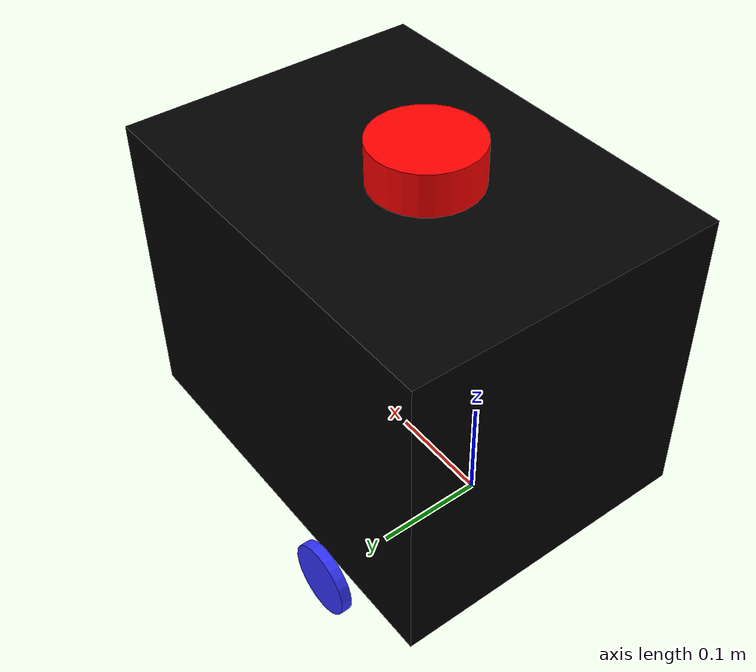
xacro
<?xml version="1.0"?>
<robot xmlns:xacro="http://www.ros.org/wiki/xacro"  name="robot">

    <xacro:arg name="use_ros2_control" default="true" />
    <xacro:arg name="sim_mode" default="false" />

    <xacro:include filename="robot_core.xacro" />

    <xacro:if value="$(arg use_ros2_control)">
        <xacro:include filename="ros2_control.xacro" />
    </xacro:if>
    <xacro:unless value="$(arg use_ros2_control)">
        <xacro:include filename="gazebo_control.xacro" />
    </xacro:unless>

    <xacro:include filename="lidar.xacro" />

</robot>

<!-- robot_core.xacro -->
<robot xmlns:xacro="http://www.ros.org/wiki/xacro"  name="robot">

    <xacro:include filename="inertial_macros.xacro" />

    <xacro:property name="chassis_length" value="0.4"/>

    <xacro:property name="wheel_thickness" value="0.01"/>
    <xacro:property name="wheel_offset_y" value="0.1675"/>
    <xacro:property name="wheel_radius" value="0.034"/>

    <material name="white">
        <color rgba="1 1 1 1"/>
    </material>

    <material name="blue">
        <color rgba="0.2 0.2 1 1"/>
    </material>

    <material name="black">
        <color rgba="0 0 0 1"/>
    </material>

    <material name="red">
        <color rgba="1 0 0 1"/>
    </material>

    <!-- Base link -->

    <link name="base_link">
    </link>

    <!-- Base footprint link -->

    <joint name="base_footprint_joint" type="fixed">
        <parent link="base_link" />
        <child link="base_footprint" />
        <origin xyz="0 0 0" rpy="0 0 0" />
    </joint>

    <link name="base_footprint">
    </link>

    <!-- Chassis link -->

    <joint name="chassis_joint" type="fixed">
        <parent link="base_link" />
        <child link="chassis" />
        <origin xyz="-0.1 0 0" />
    </joint>

    <link name="chassis">
        <visual>
            <origin xyz="${chassis_length/2} 0 0.15" rpy="0 0 0"/>
            <geometry>
                <box size="${chassis_length} 0.3 0.3"/>
            </geometry>
            <material name="black"/>
        </visual>

        <collision>
            <origin xyz="${chassis_length/2} 0 0.15" rpy="0 0 0"/>
            <geometry>
                <box size="${chassis_length} 0.3 0.3"/>
            </geometry>
        </collision>

        <xacro:inertial_box mass="1.0" x="${chassis_length}" y="0.3" z="0.3">
            <origin xyz="${chassis_length/2} 0 0.15" rpy="0 0 0"/>
        </xacro:inertial_box>
    </link>

    <gazebo reference="chassis">
        <material>Gazebo/Black</material>
    </gazebo>

    <!-- Left wheel link -->

    <joint name="left_wheel_joint" type="continuous">
        <parent link="base_link"/>
        <child link="left_wheel"/>
        <origin xyz="0 ${wheel_offset_y} 0" rpy="-${pi/2} 0 0"/>
        <axis xyz="0 0 1"/>
    </joint>

    <link name="left_wheel">
        <visual>
            <geometry>
                <cylinder length="${wheel_thickness}" radius="${wheel_radius}" />
            </geometry>
            <material name="blue"/>
        </visual>

        <collision>
            <geometry>
                <cylinder length="${wheel_thickness}" radius="${wheel_radius}" />
            </geometry>
        </collision>

        <xacro:inertial_cylinder mass="0.05" length="${wheel_thickness}" radius="${wheel_radius}">
            <origin xyz="0 0 0" rpy="0 0 0"/>
        </xacro:inertial_cylinder>
    </link>

    <gazebo reference="left_wheel">
        <material>Gazebo/Blue</material>
    </gazebo>

    <!-- Right wheel link -->

    <joint name="right_wheel_joint" type="continuous">
        <parent link="base_link"/>
        <child link="right_wheel"/>
        <origin xyz="0 ${-wheel_offset_y} 0" rpy="${pi/2} 0 0"/>
        <axis xyz="0 0 -1"/>
    </joint>

    <link name="right_wheel">
        <visual>
            <geometry>
                <cylinder length="${wheel_thickness}" radius="${wheel_radius}" />
            </geometry>
            <material name="blue"/>
        </visual>

        <collision>
            <geometry>
                <cylinder length="${wheel_thickness}" radius="${wheel_radius}" />
            </geometry>
        </collision>

        <xacro:inertial_cylinder mass="0.05" length="${wheel_thickness}" radius="${wheel_radius}">
            <origin xyz="0 0 0" rpy="0 0 0"/>
        </xacro:inertial_cylinder>

    </link>

    <gazebo reference="right_wheel">
        <material>Gazebo/Blue</material>
    </gazebo>

    <!-- CASTER WHEEL -->

    <joint name="caster_wheel_joint" type="fixed">
        <parent link="chassis"/>
        <child link="caster_wheel"/>
        <origin xyz="0.3 0 0" rpy="0 0 0"/>
    </joint>

    <link name="caster_wheel">
        <visual>
            <geometry>
                <sphere radius="0.03" />
            </geometry>
            <material name="white"/>
        </visual>

        <collision>
            <geometry>
                <sphere radius="0.03" />
            </geometry>
        </collision>

        <xacro:inertial_sphere mass="0.01" radius="0.03">
            <origin xyz="0 0 0" rpy="0 0 0"/>
        </xacro:inertial_sphere>
    </link>

    <gazebo reference="caster_wheel">
        <material>Gazebo/Blue</material>
        <mu1 value="0.001" />
        <mu2 value="0.001" />
    </gazebo>

</robot>

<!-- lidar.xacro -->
<robot xmlns:xacro="http://www.ros.org/wiki/xacro">

    <joint name="laser_joint" type="fixed">
        <parent link="chassis" />
        <child link="laser_frame" />
        <origin xyz="0.175 0 0.325" rpy="0 0 0"/>
    </joint>

    <link name="laser_frame">
        <visual>
            <geometry>
                <cylinder radius="0.05" length="0.04"/>
            </geometry>
            <material name="red"/>
        </visual>
        <collision>
            <geometry>
                <cylinder radius="0.05" length="0.04"/>
            </geometry>
        </collision>
        <xacro:inertial_cylinder mass="0.1" length="0.04" radius="0.05">
            <origin xyz="0 0 0" rpy="0 0 0"/>
        </xacro:inertial_cylinder>
    </link>

    <gazebo reference="laser_frame">
        <material>Gazebo/Red</material>

        <sensor name="laser" type="ray">
            <pose> 0 0 0 0 0 0 </pose>
            <visualize>false</visualize>
            <update_rate>10</update_rate>
            <ray>
                <scan>
                    <horizontal>
                        <samples>360</samples>
                        <min_angle>-3.14</min_angle>
                        <max_angle>3.14</max_angle>
                    </horizontal>
                </scan>
                <range>
                    <min>0.3</min>
                    <max>12</max>
                </range>
            </ray>
            <plugin name="laser_controller" filename="libgazebo_ros_ray_sensor.so">
                <ros>
                    <argument>~/out:=scan</argument>
                </ros>
                <output_type>sensor_msgs/LaserScan</output_type>
                <frame_name>laser_frame</frame_name>
            </plugin>
        </sensor>
    </gazebo>

</robot>
